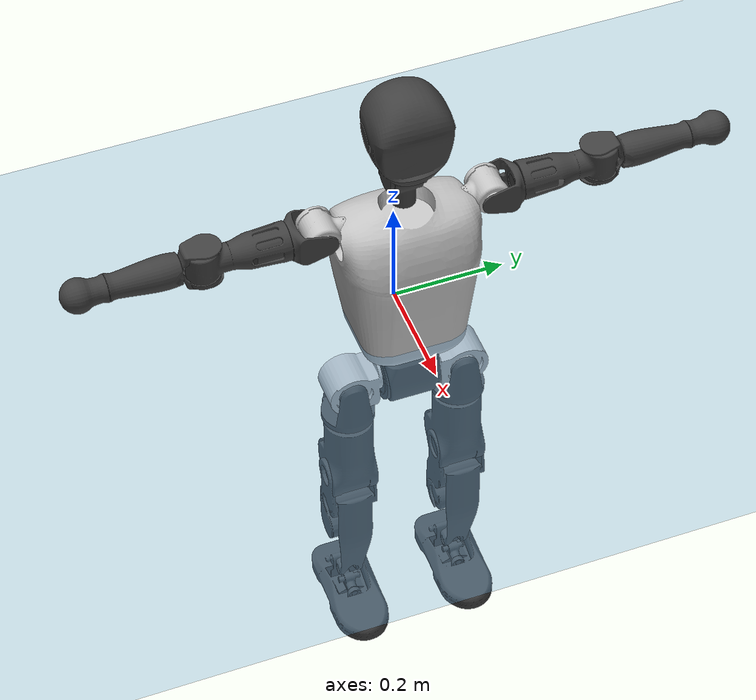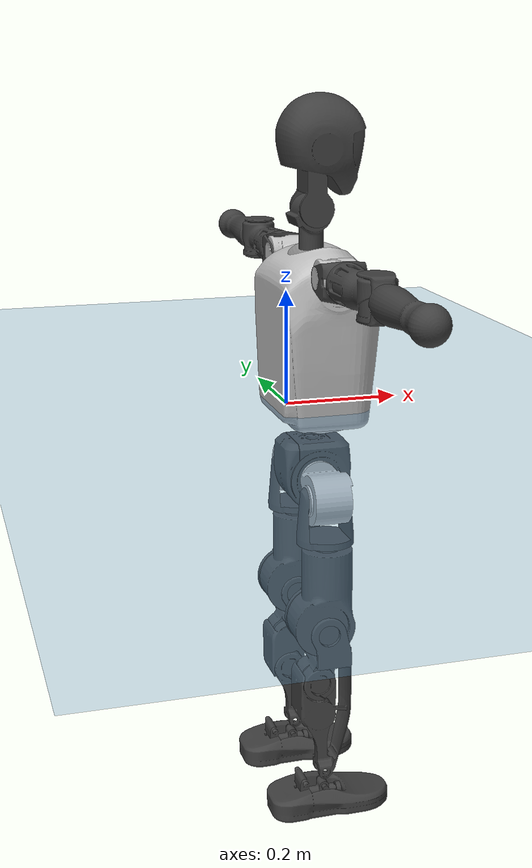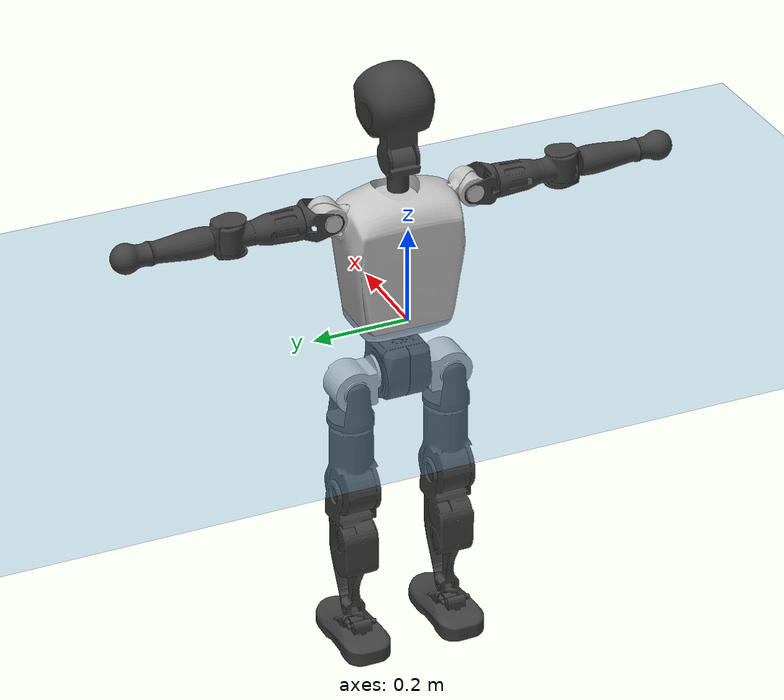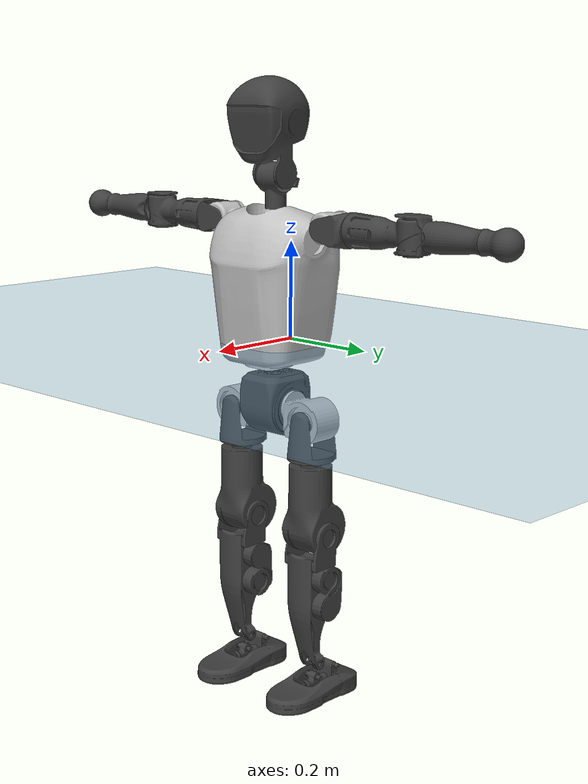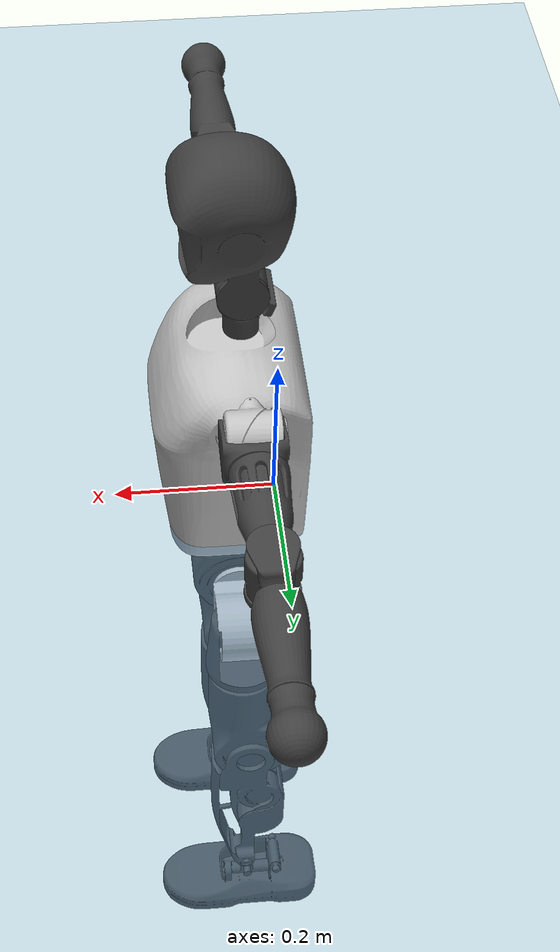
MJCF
<mujoco model="T1">
  <compiler angle="radian" assetdir="assets" balanceinertia="true" inertiafromgeom="false"/>

  <option timestep="0.005" density="1.2" viscosity="2e-05"/>

  <size nkey="1"/>

  <visual>
    <quality shadowsize="8192"/>
    <map shadowclip="0.5"/>
  </visual>

  <default>
    <default class="/">
      <joint armature="0.01" damping="0.01" frictionloss="0.1"/>
      <geom contype="0" conaffinity="0" group="1" solref="-1000 -80"/>
      <site size="0.01 0.005 0.005" group="5"/>
      <general forcelimited="true" biastype="affine" gainprm="25" biasprm="0 -25 -0.6"/>
      <default class="t1">
        <geom rgba="0.25 0.25 0.25 1"/>
        <default class="visual">
          <geom type="mesh" group="2"/>
        </default>
        <default class="collision">
          <geom group="3"/>
        </default>
        <default class="foot">
          <geom size="0.1115 0.05 0.015" type="box" condim="6" group="4" priority="1" solimp="0.015 1 0.015"/>
        </default>
        <default class="reward_collision_sphere">
          <geom group="5" rgba="1 0 0 1"/>
        </default>
      </default>
    </default>
  </default>

  <asset>
    <texture type="skybox" colorspace="auto" name="//unnamed_texture_0" builtin="gradient" rgb1="0.95 0.95 0.95" rgb2="0.95 0.95 0.95" width="100" height="600"/>
    <texture type="2d" colorspace="auto" name="texplane" builtin="checker" rgb1="0.345 0.575 0.748" rgb2="0.345 0.575 0.748" markrgb="1 1 1" width="512" height="512"/>
    <material name="MatPlane" class="/" texture="texplane" texuniform="true" texrepeat="2 2" specular="0.9"/>
    <mesh name="Trunk" class="/" file="Trunk.stl"/>
    <mesh name="H1" class="/" file="H1.stl"/>
    <mesh name="H2" class="/" file="H2.stl"/>
    <mesh name="AL1" class="/" file="AL1.stl"/>
    <mesh name="AL2" class="/" file="AL2.stl"/>
    <mesh name="AL3" class="/" file="AL3.stl"/>
    <mesh name="left_hand_link" class="/" file="left_hand_link.stl"/>
    <mesh name="AR1" class="/" file="AR1.stl"/>
    <mesh name="AR2" class="/" file="AR2.stl"/>
    <mesh name="AR3" class="/" file="AR3.stl"/>
    <mesh name="right_hand_link" class="/" file="right_hand_link.stl"/>
    <mesh name="Waist" class="/" file="Waist.stl"/>
    <mesh name="Hip_Pitch_Left" class="/" file="Hip_Pitch_Left.stl"/>
    <mesh name="Hip_Roll_Left" class="/" file="Hip_Roll_Left.stl"/>
    <mesh name="Hip_Yaw_Left" class="/" file="Hip_Yaw_Left.stl"/>
    <mesh name="Shank_Left" class="/" file="Shank_Left.stl"/>
    <mesh name="Ankle_Cross_Left" class="/" file="Ankle_Cross_Left.stl"/>
    <mesh name="left_foot_link" class="/" file="left_foot_link.stl"/>
    <mesh name="Hip_Pitch_Right" class="/" file="Hip_Pitch_Right.stl"/>
    <mesh name="Hip_Roll_Right" class="/" file="Hip_Roll_Right.stl"/>
    <mesh name="Hip_Yaw_Right" class="/" file="Hip_Yaw_Right.stl"/>
    <mesh name="Shank_Right" class="/" file="Shank_Right.stl"/>
    <mesh name="Ankle_Cross_Right" class="/" file="Ankle_Cross_Right.stl"/>
    <mesh name="right_foot_link" class="/" file="right_foot_link.stl"/>
  </asset>

  <worldbody>
    <geom name="floor" class="/" size="100 100 0.125" type="plane" group="0" material="MatPlane"/>
    <light name="toplight_shadow" class="/" pos="0 0 5" dir="0.0990148 0.0990148 -0.990148" type="directional" ambient="0.04 0.04 0.04" diffuse="0.55 0.55 0.55" specular="0.12 0.12 0.12"/>
    <light name="toplight_fill" class="/" pos="0 0 5" dir="0.0990148 0.0990148 -0.990148" type="directional" castshadow="false" ambient="0.04 0.04 0.04" diffuse="0.3 0.3 0.3" specular="0.08 0.08 0.08"/>
    <body name="trunk" childclass="t1" pos="0.000146573 0.00045417 -0.00224502" quat="0.999999 -0.000854891 -0.000210628 0.000832912">
      <inertial pos="0.0395017 -0.000388065 0.117301" quat="0.999962 -0.000768827 -0.00864699 -0.000294428" mass="9.05989" diaginertia="0.0176684 0.059301 0.0925457"/>
      <joint name="//unnamed_joint_0" type="free" armature="0" damping="0" frictionloss="0"/>
      <geom name="//unnamed_geom_1" class="visual" rgba="0.76 0.76 0.76 1" mesh="Trunk"/>
      <geom name="//unnamed_geom_2" class="collision" size="0.0697542 0.0930055 0.139508" pos="0.0433491 0 0.133484" type="box"/>
      <geom name="//unnamed_geom_3" class="reward_collision_sphere" size="0.106956" pos="0.0433491 0 0.111236"/>
      <geom name="//unnamed_geom_4" class="reward_collision_sphere" size="0.0139508" pos="0.0433491 0.0812019 0"/>
      <geom name="//unnamed_geom_5" class="reward_collision_sphere" size="0.0139508" pos="0.0433491 -0.0812019 0"/>
      <geom name="//unnamed_geom_6" class="reward_collision_sphere" size="0.0139508" pos="0.0433491 0.102219 0.200226"/>
      <geom name="//unnamed_geom_7" class="reward_collision_sphere" size="0.0139508" pos="0.0433491 -0.102219 0.200226"/>
      <site name="imu" pos="-0.0109869 -0.00208099 0.00164516" size="0.00930055"/>
      <camera name="track" pos="0 -1.91063 0" quat="0.707107 0.707107 0 0" mode="trackcom"/>
      <camera name="ego_camera" pos="0.0881432 0 0.467193" quat="-0.5 -0.5 0.5 0.5"/>
      <body name="H1" pos="0.0448187 -0.000340205 0.270825" quat="0.999999 0.000997903 0.000288105 0.000345381">
        <inertial pos="6.95869e-05 -0.00213987 0.0629178" quat="0.764604 -0.015094 0.000203292 0.644324" mass="0.356933" diaginertia="4.71552e-05 0.000180937 0.000251578"/>
        <joint name="AAHead_yaw" pos="0 0 0" axis="0.00166908 0.00250633 0.999995" range="-1.62078 1.59096" armature="0.0095255" damping="0.0107862" frictionloss="0.0887229"/>
        <geom name="//unnamed_geom_8" class="visual" mesh="H1"/>
        <body name="H2" pos="0.000837297 -0.00112407 0.0695931" quat="0.999999 0.000270504 -0.00116632 0.000182087">
          <inertial pos="0.0052691 0.000700563 0.109999" quat="0.988463 0.106123 -0.0745945 -0.0781918" mass="0.490726" diaginertia="0.000394939 0.00150373 0.00292943"/>
          <joint name="Head_pitch" pos="0 0 0" axis="-0.00978935 -0.999937 0.00548428" range="-1.24312 0.395167" armature="0.0101719" damping="0.0174986" frictionloss="0.103928"/>
          <geom name="//unnamed_geom_9" class="visual" mesh="H2"/>
          <geom name="//unnamed_geom_10" class="collision" size="0.0744044" pos="0.00722486 0 0.12236"/>
          <geom name="//unnamed_geom_11" class="reward_collision_sphere" size="0.083705" pos="0.0144497 0 0.111236"/>
        </body>
      </body>
      <body name="AL1" pos="0.0448239 0.102822 0.244332" quat="1 -0.000211682 0.000406224 -7.05079e-05">
        <inertial pos="-0.00304869 0.0434822 0.000419369" quat="0.501967 0.49868 -0.501172 0.498171" mass="0.425176" diaginertia="0.000265191 0.00105897 0.000494608"/>
        <joint name="Left_Shoulder_Pitch" pos="0 0 0" axis="-0.000125053 1 -5.2207e-05" stiffness="0.000518086" range="-3.30439 1.22181" armature="0.00960265" damping="0.00735974" frictionloss="0.0968522"/>
        <geom name="//unnamed_geom_12" class="visual" rgba="0.76 0.76 0.76 1" mesh="AL1"/>
        <body name="AL2" pos="0.00122232 0.0449084 -0.00219305" quat="0.999999 -0.00035222 0.000636393 -0.000708589">
          <inertial pos="0.00370553 0.0361167 -0.0021055" quat="0.491023 0.51022 -0.488144 0.510184" mass="0.130396" diaginertia="7.96263e-05 0.0002728 0.000296327"/>
          <joint name="Left_Shoulder_Roll" pos="0 0 0" axis="-0.999935 -0.0113713 -0.00110448" range="-1.57869 1.75663" armature="0.00925278" damping="0.00567085" frictionloss="0.0826309"/>
          <geom name="//unnamed_geom_13" class="visual" mesh="AL2"/>
          <body name="AL3" pos="-0.00155935 0.0579871 0.00114322" quat="1 2.21349e-05 -0.000172536 -1.90181e-05">
            <inertial pos="0.000378569 0.0815345 0.00165687" quat="0.706035 0.708177 -0.000265985 -8.98826e-05" mass="0.813885" diaginertia="0.00250786 0.0100949 0.00105906"/>
            <joint name="Left_Elbow_Pitch" pos="0 0 0" axis="-0.00934378 -0.999951 0.00311604" range="-2.28128 2.26585" armature="0.00962723" damping="0.0112802" frictionloss="0.0892968"/>
            <geom name="//unnamed_geom_14" class="visual" mesh="AL3"/>
            <geom name="//unnamed_geom_15" class="collision" size="0.0279017 0.0697542" pos="0 0.0477658 0" quat="0.707105 0.707108 0 0" type="cylinder"/>
            <geom name="//unnamed_geom_16" class="reward_collision_sphere" size="0.033482"/>
            <body name="left_hand_link" pos="-8.71697e-05 0.138675 0.00309513" quat="1 -0.000412328 -0.000122501 0.000261933">
              <inertial pos="-0.000179784 0.104189 0.00143706" quat="0.707877 0.706334 -0.00130184 -0.000980735" mass="0.273708" diaginertia="0.00160591 0.00671555 0.000376989"/>
              <joint name="Left_Elbow_Yaw" pos="0 0 0" axis="0.00931384 0.008979 0.999916" range="-2.4641 0.00852581" armature="0.00905912" damping="0.0138891" frictionloss="0.0946891"/>
              <geom name="//unnamed_geom_17" class="visual" mesh="left_hand_link"/>
              <geom name="//unnamed_geom_18" class="collision" size="0.0279017 0.0813798" pos="0 0.124191 0" quat="0.707105 0.707108 0 0" type="cylinder"/>
              <geom name="//unnamed_geom_19" class="reward_collision_sphere" size="0.0465028"/>
              <geom name="//unnamed_geom_20" class="reward_collision_sphere" size="0.0325519" pos="0 0.105085 0"/>
              <geom name="//unnamed_geom_21" class="reward_collision_sphere" size="0.0325519" pos="0 0.205393 0"/>
            </body>
          </body>
        </body>
      </body>
      <body name="AR1" pos="0.0424171 -0.100849 0.245373" quat="0.999999 0.000758386 0.0010798 8.14179e-05">
        <inertial pos="-0.00171674 -0.0426365 -0.000927978" quat="0.504349 0.497694 -0.502516 0.49539" mass="0.429975" diaginertia="0.000267366 0.00103787 0.000506422"/>
        <joint name="Right_Shoulder_Pitch" pos="0 0 0" axis="-0.00296834 -0.99999 -0.00333305" range="-1.22755 3.31835" armature="0.00942688" damping="0" frictionloss="0.0945913"/>
        <geom name="//unnamed_geom_22" class="visual" rgba="0.76 0.76 0.76 1" mesh="AR1"/>
        <body name="AR2" pos="-1.32202e-05 -0.0451263 -0.00131013" quat="1 0.00020957 4.19048e-05 0.000194798">
          <inertial pos="0.00361518 -0.036048 0.00121212" quat="0.511769 0.48816 -0.511284 0.488243" mass="0.126022" diaginertia="8.14934e-05 0.000275745 0.000294394"/>
          <joint name="Right_Shoulder_Roll" pos="0 0 0" axis="-0.999996 -0.00176501 0.00226766" range="-1.75947 1.56524" armature="0.00948184" damping="0.00329014" frictionloss="0.101549"/>
          <geom name="//unnamed_geom_23" class="visual" mesh="AR2"/>
          <body name="AR3" pos="-0.00148011 -0.0562495 0.000552181" quat="1 0.000257583 -0.000198425 0.000260655">
            <inertial pos="-0.0027441 -0.0814964 -0.000794063" quat="0.707716 0.706484 -0.00113832 -0.00413058" mass="0.843953" diaginertia="0.00252737 0.0100099 0.00105443"/>
            <joint name="Right_Elbow_Pitch" pos="0 0 0" axis="0.00135185 0.999998 -0.00109662" range="-2.27593 2.27527" armature="0.00864744" damping="0.00982205" frictionloss="0.0910938"/>
            <geom name="//unnamed_geom_24" class="visual" mesh="AR3"/>
            <geom name="//unnamed_geom_25" class="collision" size="0.0279017 0.0697542" pos="0 -0.0477658 0" quat="0.707105 0.707108 0 0" type="cylinder"/>
            <geom name="//unnamed_geom_26" class="reward_collision_sphere" size="0.033482"/>
            <body name="right_hand_link" pos="-0.000609237 -0.140288 0.00201878" quat="1 1.48724e-05 -7.46454e-05 -8.48578e-05">
              <inertial pos="-0.000758949 -0.103393 0.00191822" quat="0.70447 0.709721 -2.18614e-05 -0.00434551" mass="0.264785" diaginertia="0.00159789 0.00658641 0.000366076"/>
              <joint name="Right_Elbow_Yaw" pos="0 0 0" axis="-0.00500564 0.00434543 0.999978" range="-0.010763 2.4347" armature="0.00967451" damping="0.0110465" frictionloss="0.0956003"/>
              <geom name="//unnamed_geom_27" class="visual" mesh="right_hand_link"/>
              <geom name="//unnamed_geom_28" class="collision" size="0.0279017 0.0813798" pos="0 -0.124191 0" quat="0.707105 0.707108 0 0" type="cylinder"/>
              <geom name="//unnamed_geom_29" class="reward_collision_sphere" size="0.0465028"/>
              <geom name="//unnamed_geom_30" class="reward_collision_sphere" size="0.0325519" pos="0 -0.105085 0"/>
              <geom name="//unnamed_geom_31" class="reward_collision_sphere" size="0.0325519" pos="0 -0.205393 0"/>
            </body>
          </body>
        </body>
      </body>
      <body name="Waist" pos="0.0459382 0.000140311 -0.127961" quat="1 -5.95959e-05 -1.9177e-05 -1.82682e-05">
        <inertial pos="0.00172406 -0.000360135 0.00738849" quat="0.983649 0.000381592 -0.180077 0.00275752" mass="2.05676" diaginertia="0.00104529 0.00429333 0.0080026"/>
        <joint name="Waist" pos="0 0 0" axis="0.00288793 0.00486428 0.999984" range="-1.58983 1.56427" armature="0.00909533" damping="0" frictionloss="0.0926762"/>
        <geom name="//unnamed_geom_32" class="visual" mesh="Waist"/>
        <body name="Hip_Pitch_Left" pos="0.000318898 0.103479 0.00179942" quat="1 7.71757e-05 -3.90386e-05 6.32286e-05">
          <inertial pos="0.000482528 -0.00728568 -0.0227238" quat="0.976092 0.216906 0.013974 0.00120412" mass="0.84332" diaginertia="0.000357056 0.00116906 0.00212635"/>
          <joint name="Left_Hip_Pitch" pos="0 0 0" axis="-0.00245541 0.999997 -0.000874683" range="-1.76958 1.57152" armature="0.00937537" damping="0.00272304" frictionloss="0.0853057"/>
          <geom name="//unnamed_geom_33" class="visual" rgba="0.76 0.76 0.76 1" mesh="Hip_Pitch_Left"/>
          <body name="Hip_Roll_Left" pos="0.000201647 -0.00115627 -0.022399" quat="1 -8.71241e-05 -0.00017815 0.000179126">
            <inertial pos="0.000292793 0.000467579 -0.0595879" quat="0.706731 -0.00918197 -0.00510393 0.707405" mass="0.311421" diaginertia="0.000349459 0.00122226 0.000887803"/>
            <joint name="Left_Hip_Roll" pos="0 0 0" axis="-0.99998 -0.00634168 0.000791811" range="-1.55029 0.200652" armature="0.00936793" damping="0.0134201" frictionloss="0.0889709"/>
            <geom name="//unnamed_geom_34" class="visual" mesh="Hip_Roll_Left"/>
            <geom name="//unnamed_geom_35" class="reward_collision_sphere" size="0.051153"/>
            <body name="Hip_Yaw_Left" pos="-1.10833e-05 -0.000838747 -0.0892317" quat="1 -1.22087e-05 -0.000103822 8.17237e-05">
              <inertial pos="-0.00588999 -0.000225696 -0.101559" quat="0.697052 -0.0291449 -0.0332052 0.715658" mass="1.7247" diaginertia="0.0052145 0.0198362 0.00438901"/>
              <joint name="Left_Hip_Yaw" pos="0 0 0" axis="0.00121462 -0.00296075 -0.999995" range="-0.99954 1.0292" armature="0.00884586" damping="0.007841" frictionloss="0.0841428"/>
              <geom name="//unnamed_geom_36" class="visual" mesh="Hip_Yaw_Left"/>
              <geom name="//unnamed_geom_37" class="collision" size="0.0465028 0.0744044" type="cylinder"/>
              <body name="Shank_Left" pos="-0.00926156 0.00201 -0.148073" quat="0.999999 0.00043058 -0.000247157 0.00109568">
                <inertial pos="-0.00471412 -0.00204098 -0.137343" quat="0.997031 0.00738519 -0.0234014 0.0729867" mass="1.38761" diaginertia="0.00691693 0.0271379 0.00316477"/>
                <joint name="Left_Knee_Pitch" pos="0 0 0" axis="-0.000776022 0.999993 0.00375402" range="0.0178105 2.338" armature="0.00973697" damping="0.0148747" frictionloss="0.0834832"/>
                <geom name="//unnamed_geom_38" class="visual" mesh="Shank_Left"/>
                <geom name="//unnamed_geom_39" class="collision" size="0.0465028 0.0697542" pos="0 0 -0.133484" type="cylinder"/>
                <geom name="//unnamed_geom_40" class="reward_collision_sphere" size="0.0604536"/>
                <body name="Ankle_Cross_Left" pos="-0.00258566 0.00067614 -0.312289" quat="1 -4.95743e-05 0.000121501 -0.000159371">
                  <inertial pos="-0.00219016 -0.000333717 -0.00842183" quat="0.447645 0.553785 0.552776 0.432867" mass="0.0572174" diaginertia="5.70493e-06 2.00686e-05 1.90428e-05"/>
                  <joint name="Left_Ankle_Pitch" pos="0 0 0" axis="6.30014e-06 1 1.43045e-06" range="-0.876775 0.311986" armature="0.00921949" damping="0.00742874" frictionloss="0.0942006"/>
                  <geom name="//unnamed_geom_41" class="visual" mesh="Ankle_Cross_Left"/>
                  <body name="left_foot_link" pos="0.000594437 0.000272784 -0.0138778" quat="1 1.44303e-05 5.61426e-05 8.19969e-05">
                    <inertial pos="-0.000143281 0.000290696 -0.00763306" quat="-0.000595197 0.62063 -0.000445741 0.784103" mass="0.555101" diaginertia="0.000531189 0.0019084 0.00378047"/>
                    <joint name="Left_Ankle_Roll" pos="0 0 0" axis="-0.999995 -0.000221278 -0.00325679" range="-0.458097 0.426286" armature="0.00937989" damping="0.0210575" frictionloss="0.0933299"/>
                    <geom name="//unnamed_geom_42" class="visual" mesh="left_foot_link"/>
                    <geom name="left_foot" class="foot" size="0.109465 0.0512618 0.0140975" pos="0.00722486 0 -0.0166855"/>
                    <geom name="//unnamed_geom_44" class="reward_collision_sphere" size="0.0483629" pos="0.00722486 0 -0.0166855"/>
                    <geom name="//unnamed_geom_45" class="reward_collision_sphere" size="0.0279017" pos="0.0686361 -0.0219723 -0.0166855"/>
                    <geom name="//unnamed_geom_46" class="reward_collision_sphere" size="0.0279017" pos="-0.050574 -0.0219723 -0.0166855"/>
                    <site name="left_foot" class="foot" pos="0.00722486 0 -0.0166855" size="0.00930055"/>
                  </body>
                </body>
              </body>
            </body>
          </body>
        </body>
        <body name="Hip_Pitch_Right" pos="-0.00228006 -0.102109 0.00158955" quat="1 -0.000761543 -0.000138729 0.000202678">
          <inertial pos="0.000958916 0.00486523 -0.0208624" quat="0.973844 -0.22682 0.0134013 -0.000827547" mass="0.811585" diaginertia="0.000352273 0.00115127 0.00209422"/>
          <joint name="Right_Hip_Pitch" pos="0 0 0" axis="0.000748581 -0.999999 -0.00140104" range="-1.56458 1.76201" armature="0.00930205" damping="0.00802549" frictionloss="0.103867"/>
          <geom name="//unnamed_geom_47" class="visual" rgba="0.76 0.76 0.76 1" mesh="Hip_Pitch_Right"/>
          <body name="Hip_Roll_Right" pos="-0.00254469 -0.000681121 -0.0209633" quat="1 -0.000210938 0.000149938 -0.00014726">
            <inertial pos="0.00188431 9.80736e-05 -0.0601959" quat="0.706979 -0.00587921 -0.00550809 0.707189" mass="0.310057" diaginertia="0.000332671 0.00119377 0.000866087"/>
            <joint name="Right_Hip_Roll" pos="0 0 0" axis="-0.999993 -0.00369796 -7.12015e-05" stiffness="0.000675207" range="-0.191002 1.58776" armature="0.00940706" damping="0.012426" frictionloss="0.100097"/>
            <geom name="//unnamed_geom_48" class="visual" mesh="Hip_Roll_Right"/>
            <geom name="//unnamed_geom_49" class="reward_collision_sphere" size="0.051153"/>
            <body name="Hip_Yaw_Right" pos="0.00140955 0.000379734 -0.0898492" quat="1 0.000191161 0.000106322 -0.000283613">
              <inertial pos="-0.00632935 0.00208231 -0.0997852" quat="0.714436 -0.0321411 -0.0324851 0.698207" mass="1.71353" diaginertia="0.00503736 0.0192872 0.00433162"/>
              <joint name="Right_Hip_Yaw" pos="0 0 0" axis="-0.00131401 8.53185e-05 -0.999999" stiffness="0.00442491" range="-1.01073 1.00616" armature="0.00918903" damping="0.0152044" frictionloss="0.0928923"/>
              <geom name="//unnamed_geom_50" class="visual" mesh="Hip_Yaw_Right"/>
              <geom name="//unnamed_geom_51" class="collision" size="0.0465028 0.0744044" type="cylinder"/>
              <body name="Shank_Right" pos="-0.00869551 -0.00116748 -0.14704" quat="1 5.86642e-05 -6.18096e-05 7.95717e-05">
                <inertial pos="-0.00700917 -0.00143863 -0.137146" quat="0.999462 -0.00297987 -0.0119031 -0.0304075" mass="1.40971" diaginertia="0.00677624 0.0273589 0.00327067"/>
                <joint name="Right_Knee_Pitch" pos="0 0 0" axis="0.00195547 -0.999998 -0.000756885" range="-2.34784 -0.0431067" armature="0.00922032" damping="0.00588158" frictionloss="0.0895221"/>
                <geom name="//unnamed_geom_52" class="visual" mesh="Shank_Right"/>
                <geom name="//unnamed_geom_53" class="collision" size="0.0465028 0.0697542" pos="0 0 -0.133484" type="cylinder"/>
                <geom name="//unnamed_geom_54" class="reward_collision_sphere" size="0.0604536"/>
                <body name="Ankle_Cross_Right" pos="0.000554709 -9.73141e-05 -0.31358" quat="1 -0.000265708 0.000463937 0.000182947">
                  <inertial pos="-0.00328412 0.000559269 -0.00953717" quat="0.442988 0.550613 0.551242 0.44353" mass="0.0594541" diaginertia="5.75646e-06 2.06452e-05 1.95436e-05"/>
                  <joint name="Right_Ankle_Pitch" pos="0 0 0" axis="0.000177409 -0.999997 -0.00227323" range="-0.30031 0.875666" armature="0.00949657" damping="0.00277104" frictionloss="0.0927406"/>
                  <geom name="//unnamed_geom_55" class="visual" mesh="Ankle_Cross_Right"/>
                  <body name="right_foot_link" pos="0.00157839 6.74094e-05 -0.0132613" quat="1 -2.78668e-05 7.69984e-05 -1.01005e-05">
                    <inertial pos="0.000263705 0.000861688 -0.00772607" quat="0.000313059 0.620623 -0.000594951 0.784109" mass="0.554325" diaginertia="0.000534052 0.00189084 0.0037776"/>
                    <joint name="Right_Ankle_Roll" pos="0 0 0" axis="-1 0.000281955 -0.000646741" range="-0.418958 0.444267" armature="0.00928254" damping="0.0123915" frictionloss="0.104659"/>
                    <geom name="//unnamed_geom_56" class="visual" mesh="right_foot_link"/>
                    <geom name="right_foot" class="foot" size="0.103693 0.0412719 0.0154085" pos="0.00722486 0 -0.0166855"/>
                    <geom name="//unnamed_geom_58" class="reward_collision_sphere" size="0.0372022"/>
                    <geom name="//unnamed_geom_59" class="reward_collision_sphere" size="0.0279017" pos="0.00722486 0 -0.0166855"/>
                    <geom name="//unnamed_geom_60" class="reward_collision_sphere" size="0.0279017" pos="0.0686361 0.0219723 -0.0166855"/>
                    <geom name="//unnamed_geom_61" class="reward_collision_sphere" size="0.0279017" pos="-0.050574 0.0219723 -0.0166855"/>
                    <site name="right_foot" class="foot" pos="0.00722486 0 -0.0166855" size="0.00930055"/>
                  </body>
                </body>
              </body>
            </body>
          </body>
        </body>
      </body>
    </body>
  </worldbody>

  <contact>
    <pair class="/" geom1="floor" geom2="left_foot" name="//unnamed_contact_0"/>
    <pair class="/" geom1="floor" geom2="right_foot" name="//unnamed_contact_1"/>
  </contact>

  <actuator>
    <general name="AAHead_yaw" class="/" joint="AAHead_yaw" forcerange="-6.52399 6.52399" gainprm="23.9324" biasprm="0 -23.9324 -0.542789"/>
    <general name="Head_pitch" class="/" joint="Head_pitch" forcerange="-6.35866 6.35866" gainprm="23.9324" biasprm="0 -23.9324 -0.542789"/>
    <general name="Left_Shoulder_Pitch" class="/" joint="Left_Shoulder_Pitch" forcerange="-17.1005 17.1005" gainprm="23.9324" biasprm="0 -23.9324 -0.542789"/>
    <general name="Left_Shoulder_Roll" class="/" joint="Left_Shoulder_Roll" forcerange="-16.0976 16.0976" gainprm="23.9324" biasprm="0 -23.9324 -0.542789"/>
    <general name="Left_Elbow_Pitch" class="/" joint="Left_Elbow_Pitch" forcerange="-15.73 15.73" gainprm="23.9324" biasprm="0 -23.9324 -0.542789"/>
    <general name="Left_Elbow_Yaw" class="/" joint="Left_Elbow_Yaw" forcerange="-16.8067 16.8067" gainprm="23.9324" biasprm="0 -23.9324 -0.542789"/>
    <general name="Right_Shoulder_Pitch" class="/" joint="Right_Shoulder_Pitch" forcerange="-16.3641 16.3641" gainprm="23.9324" biasprm="0 -23.9324 -0.542789"/>
    <general name="Right_Shoulder_Roll" class="/" joint="Right_Shoulder_Roll" forcerange="-16.8525 16.8525" gainprm="23.9324" biasprm="0 -23.9324 -0.542789"/>
    <general name="Right_Elbow_Pitch" class="/" joint="Right_Elbow_Pitch" forcerange="-16.7078 16.7078" gainprm="23.9324" biasprm="0 -23.9324 -0.542789"/>
    <general name="Right_Elbow_Yaw" class="/" joint="Right_Elbow_Yaw" forcerange="-17.0445 17.0445" gainprm="23.9324" biasprm="0 -23.9324 -0.542789"/>
    <general name="Waist" class="/" joint="Waist" forcerange="-28.0337 28.0337" gainprm="23.9324" biasprm="0 -23.9324 -0.542789"/>
    <general name="Left_Hip_Pitch" class="/" joint="Left_Hip_Pitch" forcerange="-42.0983 42.0983" gainprm="23.9324" biasprm="0 -23.9324 -0.542789"/>
    <general name="Left_Hip_Roll" class="/" joint="Left_Hip_Roll" forcerange="-30.3527 30.3527" gainprm="23.9324" biasprm="0 -23.9324 -0.542789"/>
    <general name="Left_Hip_Yaw" class="/" joint="Left_Hip_Yaw" forcerange="-27.6346 27.6346" gainprm="23.9324" biasprm="0 -23.9324 -0.542789"/>
    <general name="Left_Knee_Pitch" class="/" joint="Left_Knee_Pitch" forcerange="-59.9793 59.9793" gainprm="23.9324" biasprm="0 -23.9324 -0.542789"/>
    <general name="Left_Ankle_Pitch" class="/" joint="Left_Ankle_Pitch" forcerange="-18.4902 18.4902" gainprm="23.9324" biasprm="0 -23.9324 -0.542789"/>
    <general name="Left_Ankle_Roll" class="/" joint="Left_Ankle_Roll" forcerange="-14.0312 14.0312" gainprm="23.9324" biasprm="0 -23.9324 -0.542789"/>
    <general name="Right_Hip_Pitch" class="/" joint="Right_Hip_Pitch" forcerange="-38.9318 38.9318" gainprm="23.9324" biasprm="0 -23.9324 -0.542789"/>
    <general name="Right_Hip_Roll" class="/" joint="Right_Hip_Roll" forcerange="-27.648 27.648" gainprm="23.9324" biasprm="0 -23.9324 -0.542789"/>
    <general name="Right_Hip_Yaw" class="/" joint="Right_Hip_Yaw" forcerange="-28.4061 28.4061" gainprm="23.9324" biasprm="0 -23.9324 -0.542789"/>
    <general name="Right_Knee_Pitch" class="/" joint="Right_Knee_Pitch" forcerange="-54.9883 54.9883" gainprm="23.9324" biasprm="0 -23.9324 -0.542789"/>
    <general name="Right_Ankle_Pitch" class="/" joint="Right_Ankle_Pitch" forcerange="-18.6956 18.6956" gainprm="23.9324" biasprm="0 -23.9324 -0.542789"/>
    <general name="Right_Ankle_Roll" class="/" joint="Right_Ankle_Roll" forcerange="-13.6575 13.6575" gainprm="23.9324" biasprm="0 -23.9324 -0.542789"/>
  </actuator>

  <sensor>
    <gyro site="imu" name="imu_angular_velocity"/>
    <velocimeter site="imu" name="imu_linear_velocity"/>
    <framelinvel objtype="site" objname="left_foot" name="left_foot_global_linear_velocity"/>
    <framelinvel objtype="site" objname="right_foot" name="right_foot_global_linear_velocity"/>
  </sensor>

  <keyframe>
    <key name="home" qpos="0 0 0.6385 1 0 0 0 0 0 0 1.4 0 -0.4 0 -1.4 0 0.4 0 -0.4 0 0 0.8 -0.4 0 0.4 0 0 -0.8 0.4 0"/>
  </keyframe>
</mujoco>
